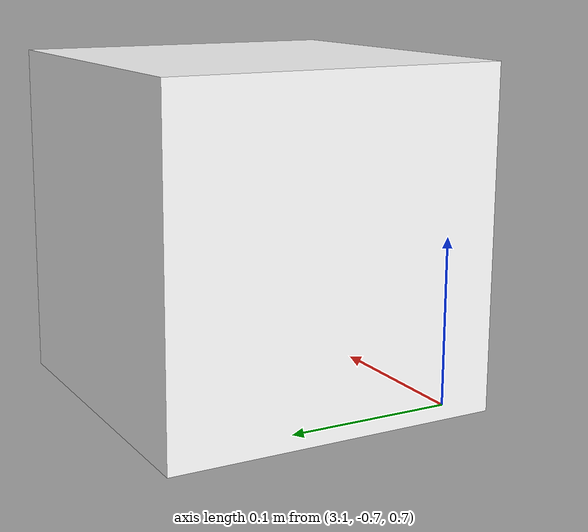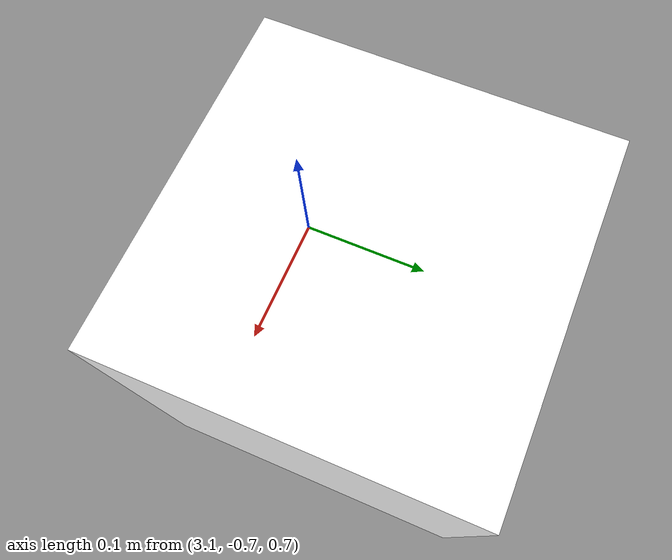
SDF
<sdf version="1.6">
 <world name="default">
  <light name="sun" type="directional">
   <pose>0 0 10 0 -0 0</pose>
   <diffuse>0.8 0.8 0.8 1</diffuse>
   <specular>0.2 0.2 0.2 1</specular>
   <attenuation>
    <range>1000</range>
    <constant>0.9</constant>
    <linear>0.01</linear>
    <quadratic>0.001</quadratic>
   </attenuation>
   <direction>-0.5 0.1 -0.9</direction>
  </light>
  <model name="ground_plane">
   <static>1</static>
   <link name="link">
    <collision name="collision">
     <geometry><plane><normal>0 0 1</normal><size>100 100</size></plane></geometry>
     <surface>
      <contact><collide_bitmask>65535</collide_bitmask></contact>
      <friction><ode><mu>100</mu><mu2>50</mu2></ode></friction>
     </surface>
    </collision>
    <visual name="visual">
     <cast_shadows>0</cast_shadows>
     <geometry><plane><normal>0 0 1</normal><size>100 100</size></plane></geometry>
     <material>
      <script><uri>file://media/materials/scripts/gazebo.material</uri><name>Gazebo/Grey</name></script>
     </material>
    </visual>
   </link>
  </model>
  <gravity>0 0 -9.8</gravity>
  <magnetic_field>6e-06 2.3e-05 -4.2e-05</magnetic_field>
  <atmosphere type="adiabatic"/>
  <physics name="default_physics" default="0" type="ode">
   <max_step_size>0.001</max_step_size>
   <real_time_factor>1</real_time_factor>
   <real_time_update_rate>1000</real_time_update_rate>
  </physics>
  <scene><ambient>0.4 0.4 0.4 1</ambient><background>0.7 0.7 0.7 1</background><shadows>1</shadows></scene>
  <audio><device>default</device></audio>
  <spherical_coordinates>
   <surface_model>EARTH_WGS84</surface_model>
   <latitude_deg>0</latitude_deg>
   <longitude_deg>0</longitude_deg>
   <elevation>0</elevation>
   <heading_deg>0</heading_deg>
  </spherical_coordinates>
  <model name="quantum_robotics_aruco">
   <link name="marker">
    <pose>0 0 0.8 0 -0 0</pose>
    <visual name="visual">
     <geometry><box><size>0.2 0.2 0.2</size></box></geometry>
     <material>
      <script>
       <uri>model://quantum_robotics_aruco/materials/scripts</uri>
       <uri>model://quantum_robotics_aruco/materials/textures</uri>
       <name>QuantumRoboticsAruco/Marker</name>
      </script>
      <ambient>1 1 1 1</ambient>
      <diffuse>1 1 1 1</diffuse>
      <specular>0 0 0 1</specular>
      <emissive>1 1 1 0</emissive>
      <shader type="vertex"><normal_map>__default__</normal_map></shader>
     </material>
    </visual>
    <collision name="collision"><geometry><box><size>0.2 0.2 0.2</size></box></geometry></collision>
   </link>
   <static>1</static>
   <pose>3.18056 -0.616731 0 0 -0 0</pose>
  </model>
 </world>
</sdf>
